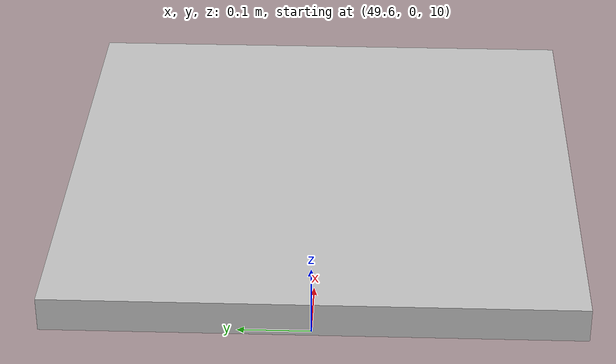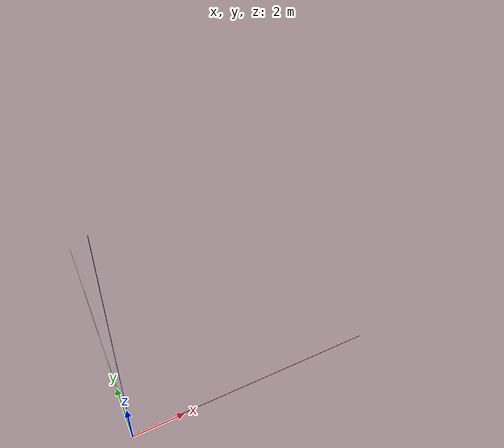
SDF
<sdf version="1.9">
 <world name="iris_runway">
  <physics name="1ms" type="ignore">
   <max_step_size>0.001</max_step_size>
   <real_time_factor>1.0</real_time_factor>
  </physics>
  <plugin filename="gz-sim-physics-system" name="gz::sim::systems::Physics"/>
  <plugin filename="gz-sim-sensors-system" name="gz::sim::systems::Sensors">
   <render_engine>ogre2</render_engine>
  </plugin>
  <plugin filename="gz-sim-user-commands-system" name="gz::sim::systems::UserCommands"/>
  <plugin filename="gz-sim-scene-broadcaster-system" name="gz::sim::systems::SceneBroadcaster"/>
  <plugin filename="gz-sim-imu-system" name="gz::sim::systems::Imu"/>
  <plugin filename="gz-sim-navsat-system" name="gz::sim::systems::NavSat"/>
  <scene><ambient>1.0 1.0 1.0</ambient><background>0.8 0.8 0.8</background></scene>
  <spherical_coordinates>
   <latitude_deg>-35.363262</latitude_deg>
   <longitude_deg>149.165237</longitude_deg>
   <elevation>584</elevation>
   <heading_deg>0</heading_deg>
   <surface_model>EARTH_WGS84</surface_model>
  </spherical_coordinates>
  <light type="directional" name="sun">
   <pose>0 0 10 0 0 0</pose>
   <diffuse>0.8 0.8 0.8 1</diffuse>
   <specular>0.8 0.8 0.8 1</specular>
   <attenuation>
    <range>1000</range>
    <constant>0.9</constant>
    <linear>0.01</linear>
    <quadratic>0.001</quadratic>
   </attenuation>
   <direction>-0.5 0.1 -0.9</direction>
  </light>
  <model name="axes">
   <static>1</static>
   <link name="link">
    <visual name="r">
     <cast_shadows>0</cast_shadows>
     <pose>5 0 0.1 0 0 0</pose>
     <geometry><box><size>10 0.01 0.01</size></box></geometry>
     <material>
      <ambient>1 0 0 0.8</ambient>
      <diffuse>1 0 0 0.8</diffuse>
      <emissive>1 0 0 0.8</emissive>
      <specular>0.5 0.5 0.5 0.8</specular>
     </material>
    </visual>
    <visual name="g">
     <cast_shadows>0</cast_shadows>
     <pose>0 5 0.1 0 0 0</pose>
     <geometry><box><size>0.01 10 0.01</size></box></geometry>
     <material>
      <ambient>0 1 0 0.8</ambient>
      <diffuse>0 1 0 0.8</diffuse>
      <emissive>0 1 0 0.8</emissive>
      <specular>0.5 0.5 0.5 0.8</specular>
     </material>
    </visual>
    <visual name="b">
     <cast_shadows>0</cast_shadows>
     <pose>0 0 5.1 0 0 0</pose>
     <geometry><box><size>0.01 0.01 10</size></box></geometry>
     <material>
      <ambient>0 0 1 0.8</ambient>
      <diffuse>0 0 1 0.8</diffuse>
      <emissive>0 0 1 0.8</emissive>
      <specular>0.5 0.5 0.5 0.8</specular>
     </material>
    </visual>
    <sensor name="navsat_sensor" type="navsat"><always_on>1</always_on><update_rate>1</update_rate></sensor>
   </link>
  </model>
  <include><uri>model://tag</uri><pose degrees="true">50 0 10 0 0 0</pose></include>
  <plugin name="mover_plugin" filename="libMoverPlugin.so">
   <model>wave_landing_pad</model>
   <topic>pad_mover</topic>
  </plugin>
 </world>
</sdf>

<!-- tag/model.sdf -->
<sdf version="1.9">
  <model name="wave_landing_pad">
    <static>false</static>
    <link name="link">
      <gravity>false</gravity>
      <pose>0 0 0 0 0 0</pose>
      <collision name="collision">
        <geometry>
          <box>
            <size>0.75 0.75 0.05</size>
          </box>
        </geometry>
      </collision>
      <visual name="visual">
        <geometry>
          <box>
            <size>0.75 0.75 0.05</size>
          </box>
        </geometry>
        <material>
          <ambient>0.8 0.8 0.8 1</ambient>
          <diffuse>0.8 0.8 0.8 1</diffuse>
          <specular>0.1 0.1 0.1 1</specular>
          <pbr>
            <metal>
              <albedo_map>materials/textures/SixDof.png</albedo_map>
              <roughness>0.6</roughness>
              <metalness>0</metalness>
            </metal>
          </pbr>
        </material>
      </visual>
    </link>

  </model>
</sdf>
